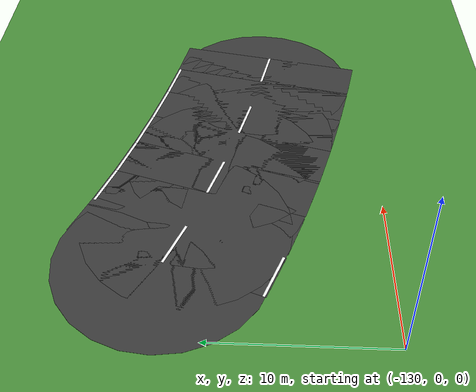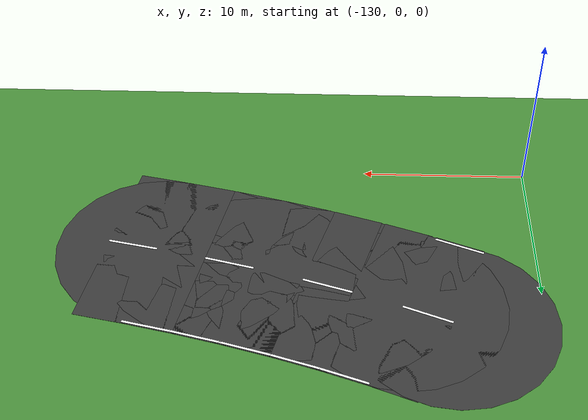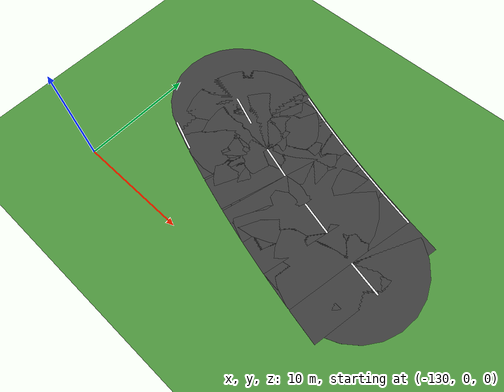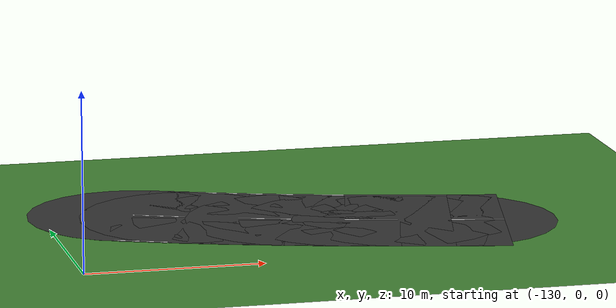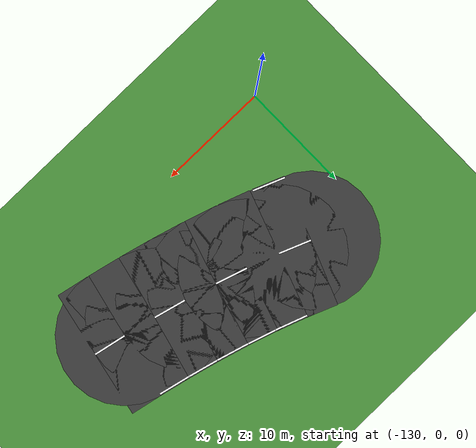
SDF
<sdf version="1.6">
 <world name="sem_silesia_ring_2026">
  <model name="ground_plane">
   <static>true</static>
   <link name="link">
    <collision name="collision">
     <geometry><plane><normal>0 0 1</normal><size>1200 1200</size></plane></geometry>
     <surface><friction><ode><mu>0.6</mu><mu2>0.6</mu2></ode></friction></surface>
    </collision>
    <visual name="visual">
     <geometry><plane><normal>0 0 1</normal><size>1200 1200</size></plane></geometry>
     <material><ambient>0.28 0.55 0.22 1</ambient><diffuse>0.28 0.55 0.22 1</diffuse></material>
    </visual>
   </link>
  </model>
  <model name="road_s398">
   <static>true</static>
   <pose>-123.4305 11.7412 0.0030 0 0 -0.3780</pose>
   <link name="link">
    <visual name="v">
     <geometry><box><size>3.0023 12.0000 0.0060</size></box></geometry>
     <material><ambient>0.22 0.22 0.22 1</ambient><diffuse>0.22 0.22 0.22 1</diffuse></material>
    </visual>
    <collision name="c">
     <geometry><box><size>3.0023 12.0000 0.0060</size></box></geometry>
     <surface><friction><ode><mu>0.9</mu><mu2>0.9</mu2></ode></friction></surface>
    </collision>
   </link>
  </model>
  <model name="road_jnt398">
   <static>true</static>
   <pose>-124.8257 12.2952 0.0030 0 0 0</pose>
   <link name="link">
    <visual name="v">
     <geometry><cylinder><radius>6.0000</radius><length>0.0060</length></cylinder></geometry>
     <material><ambient>0.22 0.22 0.22 1</ambient><diffuse>0.22 0.22 0.22 1</diffuse></material>
    </visual>
    <collision name="c">
     <geometry><cylinder><radius>6.0000</radius><length>0.0060</length></cylinder></geometry>
     <surface><friction><ode><mu>0.9</mu><mu2>0.9</mu2></ode></friction></surface>
    </collision>
   </link>
  </model>
  <model name="wl_R_s398">
   <static>true</static>
   <pose>-125.5894 6.3041 0.0070 0 0 -0.3780</pose>
   <link name="link">
    <visual name="v">
     <geometry><box><size>3.0023 0.1500 0.0080</size></box></geometry>
     <material><ambient>0.95 0.95 0.95 1</ambient><diffuse>0.95 0.95 0.95 1</diffuse></material>
    </visual>
   </link>
  </model>
  <model name="cd_s398">
   <static>true</static>
   <pose>-123.4305 11.7412 0.0070 0 0 -0.3780</pose>
   <link name="link">
    <visual name="v">
     <geometry><box><size>3.0023 0.1500 0.0080</size></box></geometry>
     <material><ambient>0.95 0.95 0.95 1</ambient><diffuse>0.95 0.95 0.95 1</diffuse></material>
    </visual>
   </link>
  </model>
  <model name="road_s399">
   <static>true</static>
   <pose>-120.6205 10.6853 0.0030 0 0 -0.3409</pose>
   <link name="link">
    <visual name="v">
     <geometry><box><size>3.0024 12.0000 0.0060</size></box></geometry>
     <material><ambient>0.22 0.22 0.22 1</ambient><diffuse>0.22 0.22 0.22 1</diffuse></material>
    </visual>
    <collision name="c">
     <geometry><box><size>3.0024 12.0000 0.0060</size></box></geometry>
     <surface><friction><ode><mu>0.9</mu><mu2>0.9</mu2></ode></friction></surface>
    </collision>
   </link>
  </model>
  <model name="road_jnt399">
   <static>true</static>
   <pose>-122.0353 11.1872 0.0030 0 0 0</pose>
   <link name="link">
    <visual name="v">
     <geometry><cylinder><radius>6.0000</radius><length>0.0060</length></cylinder></geometry>
     <material><ambient>0.22 0.22 0.22 1</ambient><diffuse>0.22 0.22 0.22 1</diffuse></material>
    </visual>
    <collision name="c">
     <geometry><cylinder><radius>6.0000</radius><length>0.0060</length></cylinder></geometry>
     <surface><friction><ode><mu>0.9</mu><mu2>0.9</mu2></ode></friction></surface>
    </collision>
   </link>
  </model>
  <model name="wl_L_s399">
   <static>true</static>
   <pose>-118.6646 16.1987 0.0070 0 0 -0.3409</pose>
   <link name="link">
    <visual name="v">
     <geometry><box><size>3.0024 0.1500 0.0080</size></box></geometry>
     <material><ambient>0.95 0.95 0.95 1</ambient><diffuse>0.95 0.95 0.95 1</diffuse></material>
    </visual>
   </link>
  </model>
  <model name="road_s400">
   <static>true</static>
   <pose>-117.7749 9.7292 0.0030 0 0 -0.3074</pose>
   <link name="link">
    <visual name="v">
     <geometry><box><size>3.0024 12.0000 0.0060</size></box></geometry>
     <material><ambient>0.22 0.22 0.22 1</ambient><diffuse>0.22 0.22 0.22 1</diffuse></material>
    </visual>
    <collision name="c">
     <geometry><box><size>3.0024 12.0000 0.0060</size></box></geometry>
     <surface><friction><ode><mu>0.9</mu><mu2>0.9</mu2></ode></friction></surface>
    </collision>
   </link>
  </model>
  <model name="road_jnt400">
   <static>true</static>
   <pose>-119.2057 10.1834 0.0030 0 0 0</pose>
   <link name="link">
    <visual name="v">
     <geometry><cylinder><radius>6.0000</radius><length>0.0060</length></cylinder></geometry>
     <material><ambient>0.22 0.22 0.22 1</ambient><diffuse>0.22 0.22 0.22 1</diffuse></material>
    </visual>
    <collision name="c">
     <geometry><cylinder><radius>6.0000</radius><length>0.0060</length></cylinder></geometry>
     <surface><friction><ode><mu>0.9</mu><mu2>0.9</mu2></ode></friction></surface>
    </collision>
   </link>
  </model>
  <model name="wl_L_s400">
   <static>true</static>
   <pose>-116.0049 15.3050 0.0070 0 0 -0.3074</pose>
   <link name="link">
    <visual name="v">
     <geometry><box><size>3.0024 0.1500 0.0080</size></box></geometry>
     <material><ambient>0.95 0.95 0.95 1</ambient><diffuse>0.95 0.95 0.95 1</diffuse></material>
    </visual>
   </link>
  </model>
  <model name="cd_s400">
   <static>true</static>
   <pose>-117.7749 9.7292 0.0070 0 0 -0.3074</pose>
   <link name="link">
    <visual name="v">
     <geometry><box><size>3.0024 0.1500 0.0080</size></box></geometry>
     <material><ambient>0.95 0.95 0.95 1</ambient><diffuse>0.95 0.95 0.95 1</diffuse></material>
    </visual>
   </link>
  </model>
  <model name="road_s401">
   <static>true</static>
   <pose>-114.9001 8.8643 0.0030 0 0 -0.2771</pose>
   <link name="link">
    <visual name="v">
     <geometry><box><size>3.0024 12.0000 0.0060</size></box></geometry>
     <material><ambient>0.22 0.22 0.22 1</ambient><diffuse>0.22 0.22 0.22 1</diffuse></material>
    </visual>
    <collision name="c">
     <geometry><box><size>3.0024 12.0000 0.0060</size></box></geometry>
     <surface><friction><ode><mu>0.9</mu><mu2>0.9</mu2></ode></friction></surface>
    </collision>
   </link>
  </model>
  <model name="road_jnt401">
   <static>true</static>
   <pose>-116.3440 9.2750 0.0030 0 0 0</pose>
   <link name="link">
    <visual name="v">
     <geometry><cylinder><radius>6.0000</radius><length>0.0060</length></cylinder></geometry>
     <material><ambient>0.22 0.22 0.22 1</ambient><diffuse>0.22 0.22 0.22 1</diffuse></material>
    </visual>
    <collision name="c">
     <geometry><cylinder><radius>6.0000</radius><length>0.0060</length></cylinder></geometry>
     <surface><friction><ode><mu>0.9</mu><mu2>0.9</mu2></ode></friction></surface>
    </collision>
   </link>
  </model>
  <model name="wl_L_s401">
   <static>true</static>
   <pose>-113.2995 14.4910 0.0070 0 0 -0.2771</pose>
   <link name="link">
    <visual name="v">
     <geometry><box><size>3.0024 0.1500 0.0080</size></box></geometry>
     <material><ambient>0.95 0.95 0.95 1</ambient><diffuse>0.95 0.95 0.95 1</diffuse></material>
    </visual>
   </link>
  </model>
  <model name="road_s402">
   <static>true</static>
   <pose>-112.0016 8.0822 0.0030 0 0 -0.2500</pose>
   <link name="link">
    <visual name="v">
     <geometry><box><size>3.0025 12.0000 0.0060</size></box></geometry>
     <material><ambient>0.22 0.22 0.22 1</ambient><diffuse>0.22 0.22 0.22 1</diffuse></material>
    </visual>
    <collision name="c">
     <geometry><box><size>3.0025 12.0000 0.0060</size></box></geometry>
     <surface><friction><ode><mu>0.9</mu><mu2>0.9</mu2></ode></friction></surface>
    </collision>
   </link>
  </model>
  <model name="road_jnt402">
   <static>true</static>
   <pose>-113.4561 8.4535 0.0030 0 0 0</pose>
   <link name="link">
    <visual name="v">
     <geometry><cylinder><radius>6.0000</radius><length>0.0060</length></cylinder></geometry>
     <material><ambient>0.22 0.22 0.22 1</ambient><diffuse>0.22 0.22 0.22 1</diffuse></material>
    </visual>
    <collision name="c">
     <geometry><cylinder><radius>6.0000</radius><length>0.0060</length></cylinder></geometry>
     <surface><friction><ode><mu>0.9</mu><mu2>0.9</mu2></ode></friction></surface>
    </collision>
   </link>
  </model>
  <model name="wl_L_s402">
   <static>true</static>
   <pose>-110.5545 13.7504 0.0070 0 0 -0.2500</pose>
   <link name="link">
    <visual name="v">
     <geometry><box><size>3.0025 0.1500 0.0080</size></box></geometry>
     <material><ambient>0.95 0.95 0.95 1</ambient><diffuse>0.95 0.95 0.95 1</diffuse></material>
    </visual>
   </link>
  </model>
  <model name="cd_s402">
   <static>true</static>
   <pose>-112.0016 8.0822 0.0070 0 0 -0.2500</pose>
   <link name="link">
    <visual name="v">
     <geometry><box><size>3.0025 0.1500 0.0080</size></box></geometry>
     <material><ambient>0.95 0.95 0.95 1</ambient><diffuse>0.95 0.95 0.95 1</diffuse></material>
    </visual>
   </link>
  </model>
  <model name="road_s403">
   <static>true</static>
   <pose>-109.0838 7.3750 0.0030 0 0 -0.2256</pose>
   <link name="link">
    <visual name="v">
     <geometry><box><size>3.0025 12.0000 0.0060</size></box></geometry>
     <material><ambient>0.22 0.22 0.22 1</ambient><diffuse>0.22 0.22 0.22 1</diffuse></material>
    </visual>
    <collision name="c">
     <geometry><box><size>3.0025 12.0000 0.0060</size></box></geometry>
     <surface><friction><ode><mu>0.9</mu><mu2>0.9</mu2></ode></friction></surface>
    </collision>
   </link>
  </model>
  <model name="road_jnt403">
   <static>true</static>
   <pose>-110.5470 7.7108 0.0030 0 0 0</pose>
   <link name="link">
    <visual name="v">
     <geometry><cylinder><radius>6.0000</radius><length>0.0060</length></cylinder></geometry>
     <material><ambient>0.22 0.22 0.22 1</ambient><diffuse>0.22 0.22 0.22 1</diffuse></material>
    </visual>
    <collision name="c">
     <geometry><cylinder><radius>6.0000</radius><length>0.0060</length></cylinder></geometry>
     <surface><friction><ode><mu>0.9</mu><mu2>0.9</mu2></ode></friction></surface>
    </collision>
   </link>
  </model>
  <model name="wl_L_s403">
   <static>true</static>
   <pose>-107.7750 13.0767 0.0070 0 0 -0.2256</pose>
   <link name="link">
    <visual name="v">
     <geometry><box><size>3.0025 0.1500 0.0080</size></box></geometry>
     <material><ambient>0.95 0.95 0.95 1</ambient><diffuse>0.95 0.95 0.95 1</diffuse></material>
    </visual>
   </link>
  </model>
  <model name="road_s404">
   <static>true</static>
   <pose>-106.1505 6.7350 0.0030 0 0 -0.2040</pose>
   <link name="link">
    <visual name="v">
     <geometry><box><size>3.0025 12.0000 0.0060</size></box></geometry>
     <material><ambient>0.22 0.22 0.22 1</ambient><diffuse>0.22 0.22 0.22 1</diffuse></material>
    </visual>
    <collision name="c">
     <geometry><box><size>3.0025 12.0000 0.0060</size></box></geometry>
     <surface><friction><ode><mu>0.9</mu><mu2>0.9</mu2></ode></friction></surface>
    </collision>
   </link>
  </model>
  <model name="road_jnt404">
   <static>true</static>
   <pose>-107.6206 7.0391 0.0030 0 0 0</pose>
   <link name="link">
    <visual name="v">
     <geometry><cylinder><radius>6.0000</radius><length>0.0060</length></cylinder></geometry>
     <material><ambient>0.22 0.22 0.22 1</ambient><diffuse>0.22 0.22 0.22 1</diffuse></material>
    </visual>
    <collision name="c">
     <geometry><cylinder><radius>6.0000</radius><length>0.0060</length></cylinder></geometry>
     <surface><friction><ode><mu>0.9</mu><mu2>0.9</mu2></ode></friction></surface>
    </collision>
   </link>
  </model>
  <model name="cd_s404">
   <static>true</static>
   <pose>-106.1505 6.7350 0.0070 0 0 -0.2040</pose>
   <link name="link">
    <visual name="v">
     <geometry><box><size>3.0025 0.1500 0.0080</size></box></geometry>
     <material><ambient>0.95 0.95 0.95 1</ambient><diffuse>0.95 0.95 0.95 1</diffuse></material>
    </visual>
   </link>
  </model>
 </world>
</sdf>
